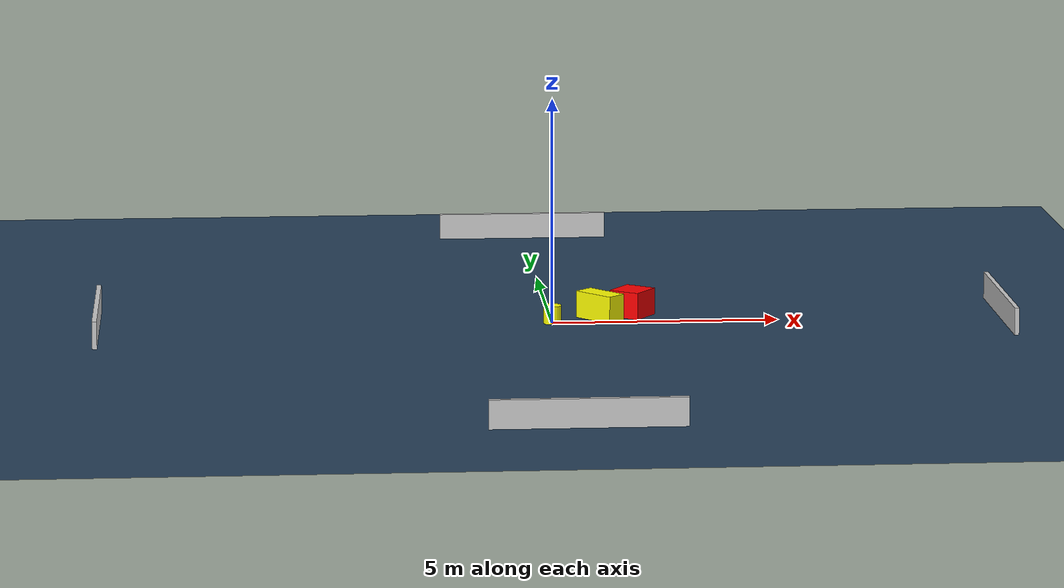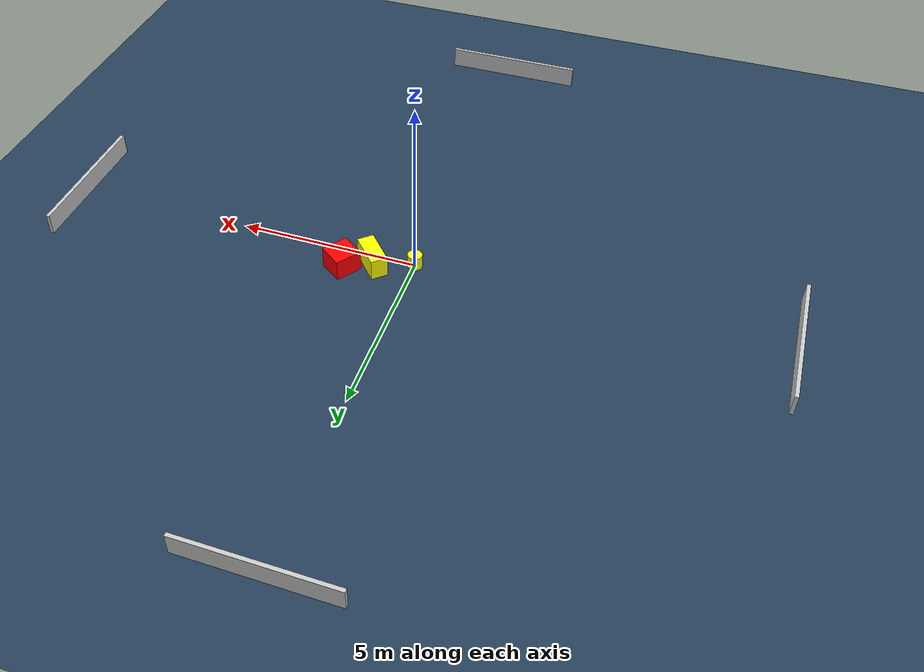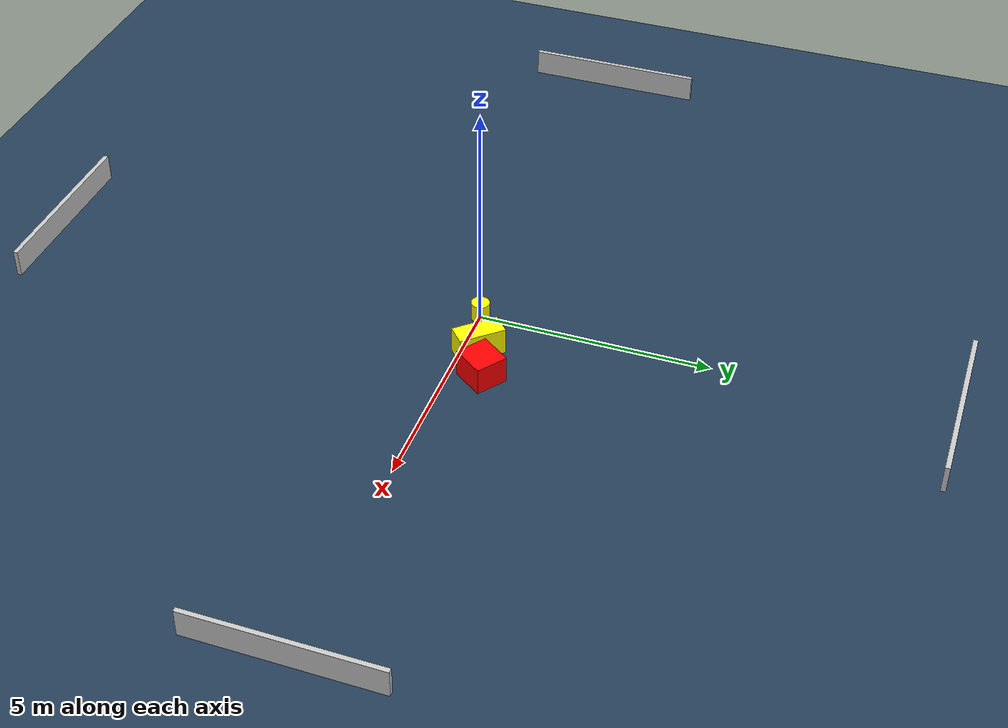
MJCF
<?xml version="1.0" ?>
<mujoco model="generated_environment">
  <option timestep="0.01" integrator="RK4" cone="elliptic"/>
  <default>
    <geom density="1"/>
  </default>
  <asset>
    <texture builtin="gradient" height="3072" name="skybox" rgb1="0.3 0.5 0.7" rgb2="0 0 0" type="skybox" width="512"/>
    <texture builtin="checker" height="300" name="groundplane" rgb1="0.2 0.3 0.4" rgb2="0.1 0.2 0.3" type="2d" width="300"/>
    <material name="groundplane" reflectance="0.2" texrepeat="5 5" texture="groundplane"/>
  </asset>
  <worldbody>
    <light dir="0 0 -1" directional="true" pos="0 0 1.5"/>
    <geom condim="3" friction="0.5 0.005 0.001" material="groundplane" name="floor" pos="0 0 0" size="0 0 0.05" type="plane"/>
    <body name="walls">
      <geom name="wall_1" condim="4" pos="-10.0 0.0 0.3" rgba="0.800000011920929 0.800000011920929 0.800000011920929 1.0" size="0.05 2.0 0.3" type="box"/>
      <geom name="wall_2" condim="4" pos="10.0 0.0 0.3" rgba="0.800000011920929 0.800000011920929 0.800000011920929 1.0" size="0.05 2.0 0.3" type="box"/>
      <geom name="wall_3" condim="4" pos="0.0 -10.0 0.3" rgba="0.800000011920929 0.800000011920929 0.800000011920929 1.0" size="2.0 0.05 0.3" type="box"/>
      <geom name="wall_4" condim="4" pos="0.0 10.0 0.3" rgba="0.800000011920929 0.800000011920929 0.800000011920929 1.0" size="2.0 0.05 0.3" type="box"/>
    </body>
    <body name="robot">
      <joint name="joint_x" type="slide" pos="0 0 0" axis="1 0 0"/>
      <joint name="joint_y" type="slide" pos="0 0 0" axis="0 1 0"/>
      <geom name="robot" type="cylinder" pos="0.0 0.0 0.2" size="0.2 0.2 0.0" mass="5.0" friction="1.0 0.005 0.0001" condim="4" rgba="1.0 1.0 0.0 1.0"/>
    </body>
    <body name="obstacle_1_movable">
      <geom name="obstacle_1_movable" condim="4" pos="1.0871265991829855 0.3492575767557519 0.3" euler="0 0 131.9190870057204" friction="0.0 0.005 0.001" rgba="1.0 1.0 0.0 1.0" size="0.5076245670226298 0.23245262650212037 0.3" type="box" mass="0.1"/>
      <joint type="free"/>
    </body>
    <body name="obstacle_2_static">
      <geom name="obstacle_2_static" condim="4" pos="1.833443631810064 0.6778506526597255 0.3" euler="0 0 144.35369455590023" friction="0.0 0.005 0.001" rgba="1.0 0.0 0.0 1.0" size="0.35614781626462316 0.37805277711267016 0.3" type="box"/>
    </body>
  </worldbody>
  <actuator>
    <motor name="actuator_x" joint="joint_x" gear="1" ctrlrange="-1 1"/>
    <motor name="actuator_y" joint="joint_y" gear="1" ctrlrange="-1 1"/>
  </actuator>
</mujoco>
